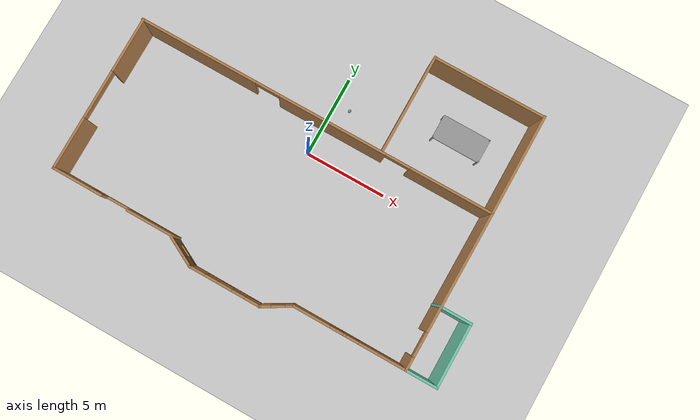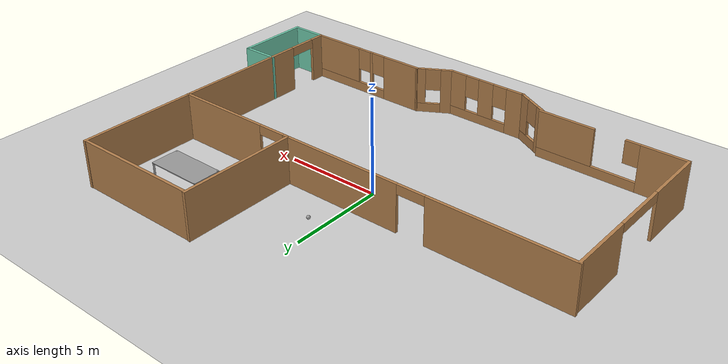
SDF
<sdf version="1.6">
 <world name="default">
  <model name="ground_plane">
   <static>1</static>
   <link name="link">
    <collision name="collision">
     <geometry><plane><normal>0 0 1</normal><size>100 100</size></plane></geometry>
     <surface><friction><ode><mu>100</mu><mu2>50</mu2></ode></friction></surface>
    </collision>
    <visual name="visual">
     <cast_shadows>0</cast_shadows>
     <geometry><plane><normal>0 0 1</normal><size>100 100</size></plane></geometry>
     <material>
      <script><uri>file://media/materials/scripts/gazebo.material</uri><name>Gazebo/Grey</name></script>
     </material>
    </visual>
   </link>
  </model>
  <model name="myHouse">
   <pose>0.37474 -0.53824 0 0 -0 0</pose>
   <link name="Wall_10">
    <pose>2.44321 -7.87426 0 0 -0 0.523599</pose>
    <visual name="Wall_10_Visual_0">
     <pose>-0.672057 0 1.25 0 -0 0</pose>
     <geometry><box><size>0.655887 0.15 2.5</size></box></geometry>
     <material>
      <script><uri>file://media/materials/scripts/gazebo.material</uri><name>Gazebo/Wood</name></script>
      <ambient>0.784314 0.392157 0 1</ambient>
     </material>
     <meta><layer>0</layer></meta>
    </visual>
    <collision name="Wall_10_Collision_0">
     <geometry><box><size>0.655887 0.15 2.5</size></box></geometry>
     <pose>-0.672057 0 1.25 0 -0 0</pose>
    </collision>
    <visual name="Wall_10_Visual_1">
     <pose>0.327943 0 0.25 0 -0 0</pose>
     <geometry><box><size>1.34411 0.15 0.5</size></box></geometry>
     <material>
      <script><uri>file://media/materials/scripts/gazebo.material</uri><name>Gazebo/Wood</name></script>
      <ambient>0.784314 0.392157 0 1</ambient>
     </material>
     <meta><layer>0</layer></meta>
    </visual>
    <collision name="Wall_10_Collision_1">
     <geometry><box><size>1.34411 0.15 0.5</size></box></geometry>
     <pose>0.327943 0 0.25 0 -0 0</pose>
    </collision>
    <visual name="Wall_10_Visual_2">
     <pose>0.727943 0 1.5 0 -0 0</pose>
     <geometry><box><size>0.544113 0.15 2</size></box></geometry>
     <material>
      <script><uri>file://media/materials/scripts/gazebo.material</uri><name>Gazebo/Wood</name></script>
      <ambient>0.784314 0.392157 0 1</ambient>
     </material>
     <meta><layer>0</layer></meta>
    </visual>
    <collision name="Wall_10_Collision_2">
     <geometry><box><size>0.544113 0.15 2</size></box></geometry>
     <pose>0.727943 0 1.5 0 -0 0</pose>
    </collision>
    <visual name="Wall_10_Visual_3">
     <pose>0.055887 0 1.9 0 -0 0</pose>
     <geometry><box><size>0.8 0.15 1.2</size></box></geometry>
     <material>
      <script><uri>file://media/materials/scripts/gazebo.material</uri><name>Gazebo/Wood</name></script>
      <ambient>0.784314 0.392157 0 1</ambient>
     </material>
     <meta><layer>0</layer></meta>
    </visual>
    <collision name="Wall_10_Collision_3">
     <geometry><box><size>0.8 0.15 1.2</size></box></geometry>
     <pose>0.055887 0 1.9 0 -0 0</pose>
    </collision>
   </link>
   <link name="Wall_12">
    <pose>6.66929 -7.41176 0 0 -0 0</pose>
    <visual name="Wall_12_Visual_0">
     <pose>-2.36116 0 1.25 0 -0 0</pose>
     <geometry><box><size>2.27767 0.15 2.5</size></box></geometry>
     <material>
      <script><uri>file://media/materials/scripts/gazebo.material</uri><name>Gazebo/Wood</name></script>
      <ambient>0.784314 0.392157 0 1</ambient>
     </material>
     <meta><layer>0</layer></meta>
    </visual>
    <collision name="Wall_12_Collision_0">
     <geometry><box><size>2.27767 0.15 2.5</size></box></geometry>
     <pose>-2.36116 0 1.25 0 -0 0</pose>
    </collision>
    <visual name="Wall_12_Visual_1">
     <pose>1.13884 0 0.25 0 -0 0</pose>
     <geometry><box><size>4.72233 0.15 0.5</size></box></geometry>
     <material>
      <script><uri>file://media/materials/scripts/gazebo.material</uri><name>Gazebo/Wood</name></script>
      <ambient>0.784314 0.392157 0 1</ambient>
     </material>
     <meta><layer>0</layer></meta>
    </visual>
    <collision name="Wall_12_Collision_1">
     <geometry><box><size>4.72233 0.15 0.5</size></box></geometry>
     <pose>1.13884 0 0.25 0 -0 0</pose>
    </collision>
    <visual name="Wall_12_Visual_2">
     <pose>-0.341351 0 1.5 0 -0 0</pose>
     <geometry><box><size>0.161954 0.15 2</size></box></geometry>
     <material>
      <script><uri>file://media/materials/scripts/gazebo.material</uri><name>Gazebo/Wood</name></script>
      <ambient>0.784314 0.392157 0 1</ambient>
     </material>
     <meta><layer>0</layer></meta>
    </visual>
    <collision name="Wall_12_Collision_2">
     <geometry><box><size>0.161954 0.15 2</size></box></geometry>
     <pose>-0.341351 0 1.5 0 -0 0</pose>
    </collision>
    <visual name="Wall_12_Visual_3">
     <pose>2.01981 0 1.5 0 -0 0</pose>
     <geometry><box><size>2.96037 0.15 2</size></box></geometry>
     <material>
      <script><uri>file://media/materials/scripts/gazebo.material</uri><name>Gazebo/Wood</name></script>
      <ambient>0.784314 0.392157 0 1</ambient>
     </material>
     <meta><layer>0</layer></meta>
    </visual>
    <collision name="Wall_12_Collision_3">
     <geometry><box><size>2.96037 0.15 2</size></box></geometry>
     <pose>2.01981 0 1.5 0 -0 0</pose>
    </collision>
    <visual name="Wall_12_Visual_4">
     <pose>-0.822328 0 1.9 0 -0 0</pose>
     <geometry><box><size>0.8 0.15 1.2</size></box></geometry>
     <material>
      <script><uri>file://media/materials/scripts/gazebo.material</uri><name>Gazebo/Wood</name></script>
      <ambient>0.784314 0.392157 0 1</ambient>
     </material>
     <meta><layer>0</layer></meta>
    </visual>
    <collision name="Wall_12_Collision_4">
     <geometry><box><size>0.8 0.15 1.2</size></box></geometry>
     <pose>-0.822328 0 1.9 0 -0 0</pose>
    </collision>
    <visual name="Wall_12_Visual_5">
     <pose>0.139626 0 1.9 0 -0 0</pose>
     <geometry><box><size>0.8 0.15 1.2</size></box></geometry>
     <material>
      <script><uri>file://media/materials/scripts/gazebo.material</uri><name>Gazebo/Wood</name></script>
      <ambient>0.784314 0.392157 0 1</ambient>
     </material>
     <meta><layer>0</layer></meta>
    </visual>
    <collision name="Wall_12_Collision_5">
     <geometry><box><size>0.8 0.15 1.2</size></box></geometry>
     <pose>0.139626 0 1.9 0 -0 0</pose>
    </collision>
   </link>
   <link name="Wall_14">
    <pose>10.125 -2.58559 0 0 -0 1.56443</pose>
    <visual name="Wall_14_Visual_0">
     <pose>-4.46829 0 1.25 0 -0 0</pose>
     <geometry><box><size>0.866041 0.15 2.5</size></box></geometry>
     <material>
      <script><uri>file://media/materials/scripts/gazebo.material</uri><name>Gazebo/Wood</name></script>
      <ambient>0.784314 0.392157 0 1</ambient>
     </material>
     <meta><layer>0</layer></meta>
    </visual>
    <collision name="Wall_14_Collision_0">
     <geometry><box><size>0.866041 0.15 2.5</size></box></geometry>
     <pose>-4.46829 0 1.25 0 -0 0</pose>
    </collision>
    <visual name="Wall_14_Visual_1">
     <pose>1.18302 0 1.25 0 -0 0</pose>
     <geometry><box><size>7.43658 0.15 2.5</size></box></geometry>
     <material>
      <script><uri>file://media/materials/scripts/gazebo.material</uri><name>Gazebo/Wood</name></script>
      <ambient>0.784314 0.392157 0 1</ambient>
     </material>
     <meta><layer>0</layer></meta>
    </visual>
    <collision name="Wall_14_Collision_1">
     <geometry><box><size>7.43658 0.15 2.5</size></box></geometry>
     <pose>1.18302 0 1.25 0 -0 0</pose>
    </collision>
    <visual name="Wall_14_Visual_2">
     <pose>-3.28527 0 2.25 0 -0 0</pose>
     <geometry><box><size>1.5 0.15 0.5</size></box></geometry>
     <material>
      <script><uri>file://media/materials/scripts/gazebo.material</uri><name>Gazebo/Wood</name></script>
      <ambient>0.784314 0.392157 0 1</ambient>
     </material>
     <meta><layer>0</layer></meta>
    </visual>
    <collision name="Wall_14_Collision_2">
     <geometry><box><size>1.5 0.15 0.5</size></box></geometry>
     <pose>-3.28527 0 2.25 0 -0 0</pose>
    </collision>
   </link>
   <link name="Wall_15">
    <pose>-0.894285 2.22735 0 0 -0 3.14159</pose>
    <visual name="Wall_15_Visual_0">
     <pose>-8.54304 0 1.25 0 -0 0</pose>
     <geometry><box><size>5.16392 0.15 2.5</size></box></geometry>
     <material>
      <script><uri>file://media/materials/scripts/gazebo.material</uri><name>Gazebo/Wood</name></script>
      <ambient>0.784314 0.392157 0 1</ambient>
     </material>
     <meta><layer>0</layer></meta>
    </visual>
    <collision name="Wall_15_Collision_0">
     <geometry><box><size>5.16392 0.15 2.5</size></box></geometry>
     <pose>-8.54304 0 1.25 0 -0 0</pose>
    </collision>
    <visual name="Wall_15_Visual_1">
     <pose>-1.10091 0 1.25 0 -0 0</pose>
     <geometry><box><size>6.72033 0.15 2.5</size></box></geometry>
     <material>
      <script><uri>file://media/materials/scripts/gazebo.material</uri><name>Gazebo/Wood</name></script>
      <ambient>0.784314 0.392157 0 1</ambient>
     </material>
     <meta><layer>0</layer></meta>
    </visual>
    <collision name="Wall_15_Collision_1">
     <geometry><box><size>6.72033 0.15 2.5</size></box></geometry>
     <pose>-1.10091 0 1.25 0 -0 0</pose>
    </collision>
    <visual name="Wall_15_Visual_2">
     <pose>7.44213 0 1.25 0 -0 0</pose>
     <geometry><box><size>7.36575 0.15 2.5</size></box></geometry>
     <material>
      <script><uri>file://media/materials/scripts/gazebo.material</uri><name>Gazebo/Wood</name></script>
      <ambient>0.784314 0.392157 0 1</ambient>
     </material>
     <meta><layer>0</layer></meta>
    </visual>
    <collision name="Wall_15_Collision_2">
     <geometry><box><size>7.36575 0.15 2.5</size></box></geometry>
     <pose>7.44213 0 1.25 0 -0 0</pose>
    </collision>
    <visual name="Wall_15_Visual_3">
     <pose>-5.21108 0 2.25 0 -0 0</pose>
     <geometry><box><size>1.5 0.15 0.5</size></box></geometry>
     <material>
      <script><uri>file://media/materials/scripts/gazebo.material</uri><name>Gazebo/Wood</name></script>
      <ambient>0.784314 0.392157 0 1</ambient>
     </material>
     <meta><layer>0</layer></meta>
    </visual>
    <collision name="Wall_15_Collision_3">
     <geometry><box><size>1.5 0.15 0.5</size></box></geometry>
     <pose>-5.21108 0 2.25 0 -0 0</pose>
    </collision>
    <visual name="Wall_15_Visual_4">
     <pose>3.00925 0 2.25 0 -0 0</pose>
     <geometry><box><size>1.5 0.15 0.5</size></box></geometry>
     <material>
      <script><uri>file://media/materials/scripts/gazebo.material</uri><name>Gazebo/Wood</name></script>
      <ambient>0.784314 0.392157 0 1</ambient>
     </material>
     <meta><layer>0</layer></meta>
    </visual>
    <collision name="Wall_15_Collision_4">
     <geometry><box><size>1.5 0.15 0.5</size></box></geometry>
     <pose>3.00925 0 2.25 0 -0 0</pose>
    </collision>
   </link>
   <link name="Wall_18">
    <collision name="Wall_18_Collision">
     <geometry><box><size>6.25 0.15 2.5</size></box></geometry>
     <pose>0 0 1.25 0 -0 0</pose>
    </collision>
    <visual name="Wall_18_Visual">
     <pose>0 0 1.25 0 -0 0</pose>
     <geometry><box><size>6.25 0.15 2.5</size></box></geometry>
     <material>
      <script><uri>file://media/materials/scripts/gazebo.material</uri><name>Gazebo/Wood</name></script>
      <ambient>1 1 1 1</ambient>
     </material>
     <meta><layer>0</layer></meta>
    </visual>
    <pose>3.30252 5.31421 0 0 -0 1.5708</pose>
   </link>
   <link name="Wall_19">
    <collision name="Wall_19_Collision">
     <geometry><box><size>7 0.15 2.5</size></box></geometry>
     <pose>0 0 1.25 0 -0 0</pose>
    </collision>
    <visual name="Wall_19_Visual">
     <pose>0 0 1.25 0 -0 0</pose>
     <geometry><box><size>7 0.15 2.5</size></box></geometry>
     <material>
      <script><uri>file://media/materials/scripts/gazebo.material</uri><name>Gazebo/Wood</name></script>
      <ambient>1 1 1 1</ambient>
     </material>
     <meta><layer>0</layer></meta>
    </visual>
    <pose>6.72752 8.33761 0 0 -0 0</pose>
   </link>
   <link name="Wall_20">
    <collision name="Wall_20_Collision">
     <geometry><box><size>6.25 0.15 2.5</size></box></geometry>
     <pose>0 0 1.25 0 -0 0</pose>
    </collision>
    <visual name="Wall_20_Visual">
     <pose>0 0 1.25 0 -0 0</pose>
     <geometry><box><size>6.25 0.15 2.5</size></box></geometry>
     <material>
      <script><uri>file://media/materials/scripts/gazebo.material</uri><name>Gazebo/Wood</name></script>
      <ambient>1 1 1 1</ambient>
     </material>
     <meta><layer>0</layer></meta>
    </visual>
    <pose>10.1525 5.31421 0 0 0 -1.5708</pose>
   </link>
   <link name="Wall_22">
    <collision name="Wall_22_Collision">
     <geometry><box><size>2 0.15 2.5</size></box></geometry>
     <pose>0 0 1.25 0 -0 0</pose>
    </collision>
    <visual name="Wall_22_Visual">
     <pose>0 0 1.25 0 -0 0</pose>
     <geometry><box><size>2 0.15 2.5</size></box></geometry>
     <material>
      <script><uri>file://media/materials/scripts/gazebo.material</uri><name>Gazebo/Grey</name></script>
      <ambient>0.435294 0.796078 0.67451 1</ambient>
     </material>
     <meta><layer>0</layer></meta>
    </visual>
    <pose>11.0193 -7.41176 0 0 -0 0</pose>
   </link>
   <link name="Wall_23">
    <collision name="Wall_23_Collision">
     <geometry><box><size>4 0.15 2.5</size></box></geometry>
     <pose>0 0 1.25 0 -0 0</pose>
    </collision>
    <visual name="Wall_23_Visual">
     <pose>0 0 1.25 0 -0 0</pose>
     <geometry><box><size>4 0.15 2.5</size></box></geometry>
     <material>
      <script><uri>file://media/materials/scripts/gazebo.material</uri><name>Gazebo/Grey</name></script>
      <ambient>0.435294 0.796078 0.67451 1</ambient>
     </material>
     <meta><layer>0</layer></meta>
    </visual>
    <pose>11.9443 -5.48676 0 0 -0 1.5708</pose>
   </link>
   <link name="Wall_24">
    <collision name="Wall_24_Collision">
     <geometry><box><size>2 0.15 2.5</size></box></geometry>
     <pose>0 0 1.25 0 -0 0</pose>
    </collision>
    <visual name="Wall_24_Visual">
     <pose>0 0 1.25 0 -0 0</pose>
     <geometry><box><size>2 0.15 2.5</size></box></geometry>
     <material>
      <script><uri>file://media/materials/scripts/gazebo.material</uri><name>Gazebo/Grey</name></script>
      <ambient>0.435294 0.796078 0.67451 1</ambient>
     </material>
     <meta><layer>0</layer></meta>
    </visual>
    <pose>11.0193 -3.56175 0 0 -0 3.14159</pose>
   </link>
   <link name="Wall_4">
    <pose>-11.9025 -2.57962 0 0 0 -1.5708</pose>
    <visual name="Wall_4_Visual_0">
     <pose>-3.14855 0 1.25 0 -0 0</pose>
     <geometry><box><size>3.45289 0.15 2.5</size></box></geometry>
     <material>
      <script><uri>file://media/materials/scripts/gazebo.material</uri><name>Gazebo/Wood</name></script>
      <ambient>0.784314 0.392157 0 1</ambient>
     </material>
     <meta><layer>0</layer></meta>
    </visual>
    <collision name="Wall_4_Collision_0">
     <geometry><box><size>3.45289 0.15 2.5</size></box></geometry>
     <pose>-3.14855 0 1.25 0 -0 0</pose>
    </collision>
    <visual name="Wall_4_Visual_1">
     <pose>3.22645 0 1.25 0 -0 0</pose>
     <geometry><box><size>3.29711 0.15 2.5</size></box></geometry>
     <material>
      <script><uri>file://media/materials/scripts/gazebo.material</uri><name>Gazebo/Wood</name></script>
      <ambient>0.784314 0.392157 0 1</ambient>
     </material>
     <meta><layer>0</layer></meta>
    </visual>
    <collision name="Wall_4_Collision_1">
     <geometry><box><size>3.29711 0.15 2.5</size></box></geometry>
     <pose>3.22645 0 1.25 0 -0 0</pose>
    </collision>
    <visual name="Wall_4_Visual_2">
     <pose>0.077891 0 2.25 0 -0 0</pose>
     <geometry><box><size>3 0.15 0.5</size></box></geometry>
     <material>
      <script><uri>file://media/materials/scripts/gazebo.material</uri><name>Gazebo/Wood</name></script>
      <ambient>0.784314 0.392157 0 1</ambient>
     </material>
     <meta><layer>0</layer></meta>
    </visual>
    <collision name="Wall_4_Collision_2">
     <geometry><box><size>3 0.15 0.5</size></box></geometry>
     <pose>0.077891 0 2.25 0 -0 0</pose>
    </collision>
   </link>
   <link name="Wall_5">
    <pose>-8.10206 -7.38239 0 0 0 -0.000736</pose>
    <visual name="Wall_5_Visual_0">
     <pose>-2.66197 0 1.25 0 -0 0</pose>
     <geometry><box><size>2.35696 0.15 2.5</size></box></geometry>
     <material>
      <script><uri>file://media/materials/scripts/gazebo.material</uri><name>Gazebo/Wood</name></script>
      <ambient>0.784314 0.392157 0 1</ambient>
     </material>
     <meta><layer>0</layer></meta>
    </visual>
    <collision name="Wall_5_Collision_0">
     <geometry><box><size>2.35696 0.15 2.5</size></box></geometry>
     <pose>-2.66197 0 1.25 0 -0 0</pose>
    </collision>
    <visual name="Wall_5_Visual_1">
     <pose>1.17848 0 0.25 0 -0 0</pose>
     <geometry><box><size>5.32394 0.15 0.5</size></box></geometry>
     <material>
      <script><uri>file://media/materials/scripts/gazebo.material</uri><name>Gazebo/Wood</name></script>
      <ambient>0.784314 0.392157 0 1</ambient>
     </material>
     <meta><layer>0</layer></meta>
    </visual>
    <collision name="Wall_5_Collision_1">
     <geometry><box><size>5.32394 0.15 0.5</size></box></geometry>
     <pose>1.17848 0 0.25 0 -0 0</pose>
    </collision>
    <visual name="Wall_5_Visual_2">
     <pose>2.34696 0 1.5 0 -0 0</pose>
     <geometry><box><size>2.98698 0.15 2</size></box></geometry>
     <material>
      <script><uri>file://media/materials/scripts/gazebo.material</uri><name>Gazebo/Wood</name></script>
      <ambient>0.784314 0.392157 0 1</ambient>
     </material>
     <meta><layer>0</layer></meta>
    </visual>
    <collision name="Wall_5_Collision_2">
     <geometry><box><size>2.98698 0.15 2</size></box></geometry>
     <pose>2.34696 0 1.5 0 -0 0</pose>
    </collision>
    <visual name="Wall_5_Visual_3">
     <pose>-1.0993 0 1.9 0 -0 0</pose>
     <geometry><box><size>0.768378 0.15 1.2</size></box></geometry>
     <material>
      <script><uri>file://media/materials/scripts/gazebo.material</uri><name>Gazebo/Wood</name></script>
      <ambient>0.784314 0.392157 0 1</ambient>
     </material>
     <meta><layer>0</layer></meta>
    </visual>
    <collision name="Wall_5_Collision_3">
     <geometry><box><size>0.768378 0.15 1.2</size></box></geometry>
     <pose>-1.0993 0 1.9 0 -0 0</pose>
    </collision>
   </link>
   <link name="Wall_7">
    <pose>-3.53554 -7.90086 0 0 0 -0.484745</pose>
    <visual name="Wall_7_Visual_0">
     <pose>-0.754717 0 1.25 0 -0 0</pose>
     <geometry><box><size>0.51145 0.15 2.5</size></box></geometry>
     <material>
      <script><uri>file://media/materials/scripts/gazebo.material</uri><name>Gazebo/Wood</name></script>
      <ambient>0.784314 0.392157 0 1</ambient>
     </material>
     <meta><layer>0</layer></meta>
    </visual>
    <collision name="Wall_7_Collision_0">
     <geometry><box><size>0.51145 0.15 2.5</size></box></geometry>
     <pose>-0.754717 0 1.25 0 -0 0</pose>
    </collision>
    <visual name="Wall_7_Visual_1">
     <pose>0.255725 0 0.25 0 -0 0</pose>
     <geometry><box><size>1.50943 0.15 0.5</size></box></geometry>
     <material>
      <script><uri>file://media/materials/scripts/gazebo.material</uri><name>Gazebo/Wood</name></script>
      <ambient>0.784314 0.392157 0 1</ambient>
     </material>
     <meta><layer>0</layer></meta>
    </visual>
    <collision name="Wall_7_Collision_1">
     <geometry><box><size>1.50943 0.15 0.5</size></box></geometry>
     <pose>0.255725 0 0.25 0 -0 0</pose>
    </collision>
    <visual name="Wall_7_Visual_2">
     <pose>0.655725 0 1.5 0 -0 0</pose>
     <geometry><box><size>0.709434 0.15 2</size></box></geometry>
     <material>
      <script><uri>file://media/materials/scripts/gazebo.material</uri><name>Gazebo/Wood</name></script>
      <ambient>0.784314 0.392157 0 1</ambient>
     </material>
     <meta><layer>0</layer></meta>
    </visual>
    <collision name="Wall_7_Collision_2">
     <geometry><box><size>0.709434 0.15 2</size></box></geometry>
     <pose>0.655725 0 1.5 0 -0 0</pose>
    </collision>
    <visual name="Wall_7_Visual_3">
     <pose>-0.098992 0 1.9 0 -0 0</pose>
     <geometry><box><size>0.8 0.15 1.2</size></box></geometry>
     <material>
      <script><uri>file://media/materials/scripts/gazebo.material</uri><name>Gazebo/Wood</name></script>
      <ambient>0.784314 0.392157 0 1</ambient>
     </material>
     <meta><layer>0</layer></meta>
    </visual>
    <collision name="Wall_7_Collision_3">
     <geometry><box><size>0.8 0.15 1.2</size></box></geometry>
     <pose>-0.098992 0 1.9 0 -0 0</pose>
    </collision>
   </link>
   <link name="Wall_8">
    <pose>-0.532862 -8.33676 0 0 -0 0</pose>
    <visual name="Wall_8_Visual_0">
     <pose>-1.74679 0 1.25 0 -0 0</pose>
     <geometry><box><size>1.00642 0.15 2.5</size></box></geometry>
     <material>
      <script><uri>file://media/materials/scripts/gazebo.material</uri><name>Gazebo/Wood</name></script>
      <ambient>0.784314 0.392157 0 1</ambient>
     </material>
     <meta><layer>0</layer></meta>
    </visual>
    <collision name="Wall_8_Collision_0">
     <geometry><box><size>1.00642 0.15 2.5</size></box></geometry>
     <pose>-1.74679 0 1.25 0 -0 0</pose>
    </collision>
    <visual name="Wall_8_Visual_1">
     <pose>0.503212 0 0.25 0 -0 0</pose>
     <geometry><box><size>3.49358 0.15 0.5</size></box></geometry>
     <material>
      <script><uri>file://media/materials/scripts/gazebo.material</uri><name>Gazebo/Wood</name></script>
      <ambient>0.784314 0.392157 0 1</ambient>
     </material>
     <meta><layer>0</layer></meta>
    </visual>
    <collision name="Wall_8_Collision_1">
     <geometry><box><size>3.49358 0.15 0.5</size></box></geometry>
     <pose>0.503212 0 0.25 0 -0 0</pose>
    </collision>
    <visual name="Wall_8_Visual_2">
     <pose>-0.004053 0 1.5 0 -0 0</pose>
     <geometry><box><size>0.879046 0.15 2</size></box></geometry>
     <material>
      <script><uri>file://media/materials/scripts/gazebo.material</uri><name>Gazebo/Wood</name></script>
      <ambient>0.784314 0.392157 0 1</ambient>
     </material>
     <meta><layer>0</layer></meta>
    </visual>
    <collision name="Wall_8_Collision_2">
     <geometry><box><size>0.879046 0.15 2</size></box></geometry>
     <pose>-0.004053 0 1.5 0 -0 0</pose>
    </collision>
    <visual name="Wall_8_Visual_3">
     <pose>1.74273 0 1.5 0 -0 0</pose>
     <geometry><box><size>1.01453 0.15 2</size></box></geometry>
     <material>
      <script><uri>file://media/materials/scripts/gazebo.material</uri><name>Gazebo/Wood</name></script>
      <ambient>0.784314 0.392157 0 1</ambient>
     </material>
     <meta><layer>0</layer></meta>
    </visual>
    <collision name="Wall_8_Collision_3">
     <geometry><box><size>1.01453 0.15 2</size></box></geometry>
     <pose>1.74273 0 1.5 0 -0 0</pose>
    </collision>
    <visual name="Wall_8_Visual_4">
     <pose>-0.843576 0 1.9 0 -0 0</pose>
     <geometry><box><size>0.8 0.15 1.2</size></box></geometry>
     <material>
      <script><uri>file://media/materials/scripts/gazebo.material</uri><name>Gazebo/Wood</name></script>
      <ambient>0.784314 0.392157 0 1</ambient>
     </material>
     <meta><layer>0</layer></meta>
    </visual>
    <collision name="Wall_8_Collision_4">
     <geometry><box><size>0.8 0.15 1.2</size></box></geometry>
     <pose>-0.843576 0 1.9 0 -0 0</pose>
    </collision>
    <visual name="Wall_8_Visual_5">
     <pose>0.83547 0 1.9 0 -0 0</pose>
     <geometry><box><size>0.8 0.15 1.2</size></box></geometry>
     <material>
      <script><uri>file://media/materials/scripts/gazebo.material</uri><name>Gazebo/Wood</name></script>
      <ambient>0.784314 0.392157 0 1</ambient>
     </material>
     <meta><layer>0</layer></meta>
    </visual>
    <collision name="Wall_8_Collision_5">
     <geometry><box><size>0.8 0.15 1.2</size></box></geometry>
     <pose>0.83547 0 1.9 0 -0 0</pose>
    </collision>
   </link>
   <static>1</static>
  </model>
  <model name="diningTable">
   <link name="link_0">
    <pose>-1.45 -0.7 -0.015 0 -0 0</pose>
    <inertial>
     <mass>1</mass>
     <inertia><ixx>0.145833</ixx><ixy>0</ixy><ixz>0</ixz><iyy>0.145833</iyy><iyz>0</iyz><izz>0.125</izz></inertia>
    </inertial>
    <visual name="visual">
     <geometry><cylinder><radius>0.05</radius><length>1</length></cylinder></geometry>
     <material>
      <lighting>1</lighting>
      <script><uri>file://media/materials/scripts/gazebo.material</uri><name>Gazebo/Grey</name></script>
      <shader type="pixel"><normal_map>__default__</normal_map></shader>
      <ambient>0.3 0.3 0.3 1</ambient>
      <diffuse>0.7 0.7 0.7 1</diffuse>
      <specular>0.01 0.01 0.01 1</specular>
      <emissive>0 0 0 1</emissive>
     </material>
    </visual>
    <collision name="collision">
     <geometry><cylinder><radius>0.05</radius><length>1</length></cylinder></geometry>
     <surface>
      <friction>
       <ode><mu>1</mu><mu2>1</mu2><fdir1>0 0 0</fdir1><slip1>0</slip1><slip2>0</slip2></ode>
       <torsional>
        <coefficient>1</coefficient>
        <patch_radius>0</patch_radius>
        <surface_radius>0</surface_radius>
        <use_patch_radius>1</use_patch_radius>
        <ode><slip>0</slip></ode>
       </torsional>
      </friction>
      <bounce><restitution_coefficient>0</restitution_coefficient><threshold>1e+06</threshold></bounce>
      <contact>
       <collide_without_contact>0</collide_without_contact>
       <collide_without_contact_bitmask>1</collide_without_contact_bitmask>
       <collide_bitmask>1</collide_bitmask>
       <ode>
        <soft_cfm>0</soft_cfm>
        <soft_erp>0.2</soft_erp>
        <kp>1e+13</kp>
        <kd>1</kd>
        <max_vel>0.01</max_vel>
        <min_depth>0</min_depth>
       </ode>
       <bullet>
        <split_impulse>1</split_impulse>
        <split_impulse_penetration_threshold>-0.01</split_impulse_penetration_threshold>
        <soft_cfm>0</soft_cfm>
        <soft_erp>0.2</soft_erp>
        <kp>1e+13</kp>
        <kd>1</kd>
       </bullet>
      </contact>
     </surface>
    </collision>
   </link>
   <link name="link_0_clone">
    <pose>1.45 0.7 -0.015 0 -0 0</pose>
    <inertial>
     <mass>1</mass>
     <inertia><ixx>0.145833</ixx><ixy>0</ixy><ixz>0</ixz><iyy>0.145833</iyy><iyz>0</iyz><izz>0.125</izz></inertia>
    </inertial>
    <visual name="visual">
     <geometry><cylinder><radius>0.05</radius><length>1</length></cylinder></geometry>
     <material>
      <lighting>1</lighting>
      <script><uri>file://media/materials/scripts/gazebo.material</uri><name>Gazebo/Grey</name></script>
      <shader type="pixel"><normal_map>__default__</normal_map></shader>
      <ambient>0.3 0.3 0.3 1</ambient>
      <diffuse>0.7 0.7 0.7 1</diffuse>
      <specular>0.01 0.01 0.01 1</specular>
      <emissive>0 0 0 1</emissive>
     </material>
    </visual>
    <collision name="collision">
     <geometry><cylinder><radius>0.05</radius><length>1</length></cylinder></geometry>
     <surface>
      <friction>
       <ode><mu>1</mu><mu2>1</mu2><fdir1>0 0 0</fdir1><slip1>0</slip1><slip2>0</slip2></ode>
       <torsional>
        <coefficient>1</coefficient>
        <patch_radius>0</patch_radius>
        <surface_radius>0</surface_radius>
        <use_patch_radius>1</use_patch_radius>
        <ode><slip>0</slip></ode>
       </torsional>
      </friction>
      <bounce><restitution_coefficient>0</restitution_coefficient><threshold>1e+06</threshold></bounce>
      <contact>
       <collide_without_contact>0</collide_without_contact>
       <collide_without_contact_bitmask>1</collide_without_contact_bitmask>
       <collide_bitmask>1</collide_bitmask>
       <ode>
        <soft_cfm>0</soft_cfm>
        <soft_erp>0.2</soft_erp>
        <kp>1e+13</kp>
        <kd>1</kd>
        <max_vel>0.01</max_vel>
        <min_depth>0</min_depth>
       </ode>
       <bullet>
        <split_impulse>1</split_impulse>
        <split_impulse_penetration_threshold>-0.01</split_impulse_penetration_threshold>
        <soft_cfm>0</soft_cfm>
        <soft_erp>0.2</soft_erp>
        <kp>1e+13</kp>
        <kd>1</kd>
       </bullet>
      </contact>
     </surface>
    </collision>
   </link>
   <link name="link_0_clone_0">
    <pose>1.45 -0.7 -0.015 0 -0 0</pose>
    <inertial>
     <mass>1</mass>
     <inertia><ixx>0.145833</ixx><ixy>0</ixy><ixz>0</ixz><iyy>0.145833</iyy><iyz>0</iyz><izz>0.125</izz></inertia>
    </inertial>
    <visual name="visual">
     <geometry><cylinder><radius>0.05</radius><length>1</length></cylinder></geometry>
     <material>
      <lighting>1</lighting>
      <script><uri>file://media/materials/scripts/gazebo.material</uri><name>Gazebo/Grey</name></script>
      <shader type="pixel"><normal_map>__default__</normal_map></shader>
      <ambient>0.3 0.3 0.3 1</ambient>
      <diffuse>0.7 0.7 0.7 1</diffuse>
      <specular>0.01 0.01 0.01 1</specular>
      <emissive>0 0 0 1</emissive>
     </material>
    </visual>
    <collision name="collision">
     <geometry><cylinder><radius>0.05</radius><length>1</length></cylinder></geometry>
     <surface>
      <friction>
       <ode><mu>1</mu><mu2>1</mu2><fdir1>0 0 0</fdir1><slip1>0</slip1><slip2>0</slip2></ode>
       <torsional>
        <coefficient>1</coefficient>
        <patch_radius>0</patch_radius>
        <surface_radius>0</surface_radius>
        <use_patch_radius>1</use_patch_radius>
        <ode><slip>0</slip></ode>
       </torsional>
      </friction>
      <bounce><restitution_coefficient>0</restitution_coefficient><threshold>1e+06</threshold></bounce>
      <contact>
       <collide_without_contact>0</collide_without_contact>
       <collide_without_contact_bitmask>1</collide_without_contact_bitmask>
       <collide_bitmask>1</collide_bitmask>
       <ode>
        <soft_cfm>0</soft_cfm>
        <soft_erp>0.2</soft_erp>
        <kp>1e+13</kp>
        <kd>1</kd>
        <max_vel>0.01</max_vel>
        <min_depth>0</min_depth>
       </ode>
       <bullet>
        <split_impulse>1</split_impulse>
        <split_impulse_penetration_threshold>-0.01</split_impulse_penetration_threshold>
        <soft_cfm>0</soft_cfm>
        <soft_erp>0.2</soft_erp>
        <kp>1e+13</kp>
        <kd>1</kd>
       </bullet>
      </contact>
     </surface>
    </collision>
   </link>
   <link name="link_0_clone_1">
    <pose>-1.45 0.7 -0.015 0 -0 0</pose>
    <inertial>
     <mass>1</mass>
     <inertia><ixx>0.145833</ixx><ixy>0</ixy><ixz>0</ixz><iyy>0.145833</iyy><iyz>0</iyz><izz>0.125</izz></inertia>
    </inertial>
    <visual name="visual">
     <geometry><cylinder><radius>0.05</radius><length>1</length></cylinder></geometry>
     <material>
      <lighting>1</lighting>
      <script><uri>file://media/materials/scripts/gazebo.material</uri><name>Gazebo/Grey</name></script>
      <shader type="pixel"><normal_map>__default__</normal_map></shader>
      <ambient>0.3 0.3 0.3 1</ambient>
      <diffuse>0.7 0.7 0.7 1</diffuse>
      <specular>0.01 0.01 0.01 1</specular>
      <emissive>0 0 0 1</emissive>
     </material>
    </visual>
    <collision name="collision">
     <geometry><cylinder><radius>0.05</radius><length>1</length></cylinder></geometry>
     <surface>
      <friction>
       <ode><mu>1</mu><mu2>1</mu2><fdir1>0 0 0</fdir1><slip1>0</slip1><slip2>0</slip2></ode>
       <torsional>
        <coefficient>1</coefficient>
        <patch_radius>0</patch_radius>
        <surface_radius>0</surface_radius>
        <use_patch_radius>1</use_patch_radius>
        <ode><slip>0</slip></ode>
       </torsional>
      </friction>
      <bounce><restitution_coefficient>0</restitution_coefficient><threshold>1e+06</threshold></bounce>
      <contact>
       <collide_without_contact>0</collide_without_contact>
       <collide_without_contact_bitmask>1</collide_without_contact_bitmask>
       <collide_bitmask>1</collide_bitmask>
       <ode>
        <soft_cfm>0</soft_cfm>
        <soft_erp>0.2</soft_erp>
        <kp>1e+13</kp>
        <kd>1</kd>
        <max_vel>0.01</max_vel>
        <min_depth>0</min_depth>
       </ode>
       <bullet>
        <split_impulse>1</split_impulse>
        <split_impulse_penetration_threshold>-0.01</split_impulse_penetration_threshold>
        <soft_cfm>0</soft_cfm>
        <soft_erp>0.2</soft_erp>
        <kp>1e+13</kp>
        <kd>1</kd>
       </bullet>
      </contact>
     </surface>
    </collision>
   </link>
   <link name="link_1">
    <pose>-0 -0 0.06 0 -0 0</pose>
    <inertial>
     <mass>1</mass>
     <inertia>
      <ixx>0.166667</ixx>
      <ixy>0</ixy>
      <ixz>0</ixz>
      <iyy>0.166667</iyy>
      <iyz>0</iyz>
      <izz>0.166667</izz>
     </inertia>
    </inertial>
    <visual name="visual">
     <pose>0 0 0.4 0 -0 0</pose>
     <geometry><box><size>3 1.5 0.05</size></box></geometry>
     <material>
      <lighting>1</lighting>
      <script><uri>file://media/materials/scripts/gazebo.material</uri><name>Gazebo/Grey</name></script>
      <shader type="pixel"><normal_map>__default__</normal_map></shader>
      <ambient>0.3 0.3 0.3 1</ambient>
      <diffuse>0.7 0.7 0.7 1</diffuse>
      <specular>0.01 0.01 0.01 1</specular>
      <emissive>0 0 0 1</emissive>
     </material>
    </visual>
    <collision name="collision">
     <pose>0 0 0.4 0 -0 0</pose>
     <geometry><box><size>3 1.5 0.05</size></box></geometry>
     <surface>
      <friction>
       <ode><mu>1</mu><mu2>1</mu2><fdir1>0 0 0</fdir1><slip1>0</slip1><slip2>0</slip2></ode>
       <torsional>
        <coefficient>1</coefficient>
        <patch_radius>0</patch_radius>
        <surface_radius>0</surface_radius>
        <use_patch_radius>1</use_patch_radius>
        <ode><slip>0</slip></ode>
       </torsional>
      </friction>
      <bounce><restitution_coefficient>0</restitution_coefficient><threshold>1e+06</threshold></bounce>
      <contact>
       <collide_without_contact>0</collide_without_contact>
       <collide_without_contact_bitmask>1</collide_without_contact_bitmask>
       <collide_bitmask>1</collide_bitmask>
       <ode>
        <soft_cfm>0</soft_cfm>
        <soft_erp>0.2</soft_erp>
        <kp>1e+13</kp>
        <kd>1</kd>
        <max_vel>0.01</max_vel>
        <min_depth>0</min_depth>
       </ode>
       <bullet>
        <split_impulse>1</split_impulse>
        <split_impulse_penetration_threshold>-0.01</split_impulse_penetration_threshold>
        <soft_cfm>0</soft_cfm>
        <soft_erp>0.2</soft_erp>
        <kp>1e+13</kp>
        <kd>1</kd>
       </bullet>
      </contact>
     </surface>
    </collision>
   </link>
   <joint name="link_1_JOINT_4" type="fixed">
    <parent>link_1</parent>
    <child>link_0_clone</child>
    <physics>
     <ode><limit><cfm>0</cfm><erp>0.2</erp></limit><suspension><cfm>0</cfm><erp>0.2</erp></suspension></ode>
    </physics>
   </joint>
   <joint name="link_1_JOINT_5" type="revolute">
    <parent>link_1</parent>
    <child>link_0_clone_0</child>
    <axis>
     <xyz>1 0 0</xyz>
     <use_parent_model_frame>0</use_parent_model_frame>
     <limit>
      <lower>-1.79769e+308</lower>
      <upper>1.79769e+308</upper>
      <effort>-1</effort>
      <velocity>-1</velocity>
     </limit>
     <dynamics>
      <spring_reference>0</spring_reference>
      <spring_stiffness>0</spring_stiffness>
      <damping>0</damping>
     </dynamics>
    </axis>
    <physics>
     <ode><limit><cfm>0</cfm><erp>0.2</erp></limit><suspension><cfm>0</cfm><erp>0.2</erp></suspension></ode>
    </physics>
   </joint>
   <joint name="link_1_JOINT_6" type="fixed">
    <parent>link_1</parent>
    <child>link_0_clone_1</child>
    <physics>
     <ode><limit><cfm>0</cfm><erp>0.2</erp></limit><suspension><cfm>0</cfm><erp>0.2</erp></suspension></ode>
    </physics>
   </joint>
   <joint name="link_1_JOINT_7" type="fixed">
    <parent>link_1</parent>
    <child>link_0</child>
    <physics>
     <ode><limit><cfm>0</cfm><erp>0.2</erp></limit><suspension><cfm>0</cfm><erp>0.2</erp></suspension></ode>
    </physics>
   </joint>
   <static>0</static>
   <pose>7.25961 4.89414 0.514998 0 -2e-06 -0.002647</pose>
  </model>
  <model name="my_ball">
   <link name="link_0">
    <inertial>
     <mass>0.409453</mass>
     <inertia>
      <ixx>0.0225775</ixx>
      <ixy>0</ixy>
      <ixz>0</ixz>
      <iyy>0.0225775</iyy>
      <iyz>0</iyz>
      <izz>0.0225775</izz>
     </inertia>
    </inertial>
    <visual name="visual">
     <geometry><sphere><radius>0.1</radius></sphere></geometry>
     <material>
      <lighting>1</lighting>
      <script><uri>file://media/materials/scripts/gazebo.material</uri><name>Gazebo/Grey</name></script>
      <shader type="pixel"><normal_map>__default__</normal_map></shader>
      <ambient>1 1 1 1</ambient>
      <diffuse>1 1 1 1</diffuse>
      <specular>1 1 1 1</specular>
      <emissive>1 1 1 1</emissive>
     </material>
    </visual>
    <collision name="collision">
     <geometry><sphere><radius>0.1</radius></sphere></geometry>
     <surface>
      <friction>
       <ode><mu>1</mu><mu2>1</mu2><fdir1>0 0 0</fdir1><slip1>0</slip1><slip2>0</slip2></ode>
       <torsional>
        <coefficient>1</coefficient>
        <patch_radius>0</patch_radius>
        <surface_radius>0</surface_radius>
        <use_patch_radius>1</use_patch_radius>
        <ode><slip>0</slip></ode>
       </torsional>
      </friction>
      <bounce><restitution_coefficient>0</restitution_coefficient><threshold>1e+06</threshold></bounce>
      <contact>
       <collide_without_contact>0</collide_without_contact>
       <collide_without_contact_bitmask>1</collide_without_contact_bitmask>
       <collide_bitmask>1</collide_bitmask>
       <ode>
        <soft_cfm>0</soft_cfm>
        <soft_erp>0.2</soft_erp>
        <kp>1e+13</kp>
        <kd>1</kd>
        <max_vel>0.01</max_vel>
        <min_depth>0</min_depth>
       </ode>
       <bullet>
        <split_impulse>1</split_impulse>
        <split_impulse_penetration_threshold>-0.01</split_impulse_penetration_threshold>
        <soft_cfm>0</soft_cfm>
        <soft_erp>0.2</soft_erp>
        <kp>1e+13</kp>
        <kd>1</kd>
       </bullet>
      </contact>
     </surface>
    </collision>
   </link>
   <static>0</static>
   <pose>0.897879 3.37154 0.1 0 -0 0</pose>
  </model>
 </world>
</sdf>
